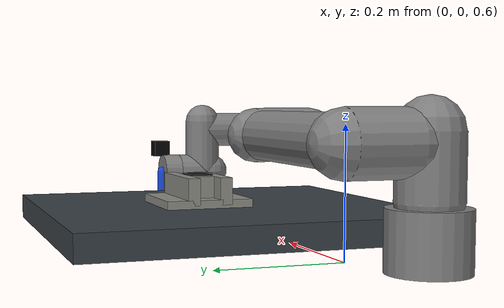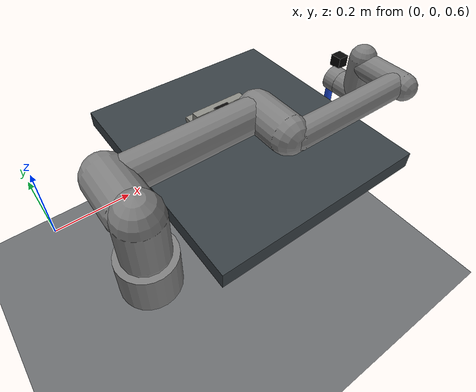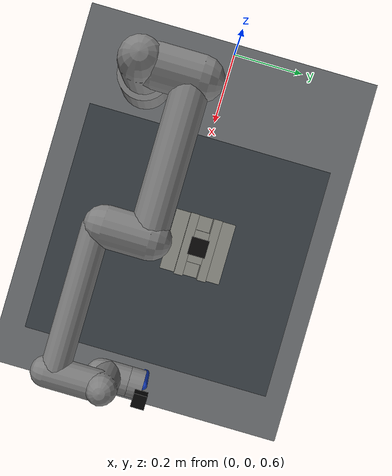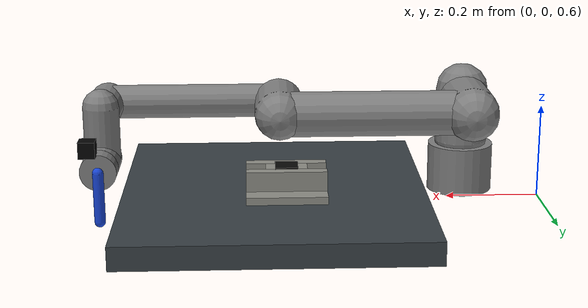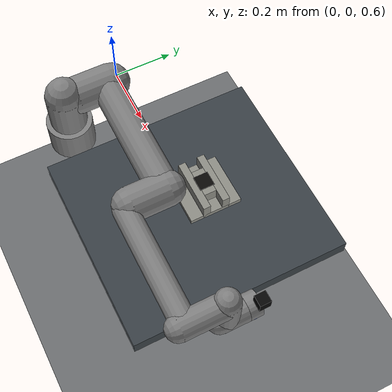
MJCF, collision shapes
<mujoco model="ur5e_peg_in_hole_full">
  <compiler angle="radian" meshdir="assets" autolimits="true"/>
  <option timestep="0.002" gravity="0 0 -9.81" integrator="implicitfast"/>

  <visual>
    <headlight diffuse="0.6 0.6 0.6" ambient="0.1 0.1 0.1" specular="0 0 0"/>
    <global offwidth="2560" offheight="1440"/>
  </visual>

  <custom>
    <numeric name="ik_joint_count" data="6"/>
  </custom>

  <default>
    <default class="ur5e">
      <material specular="0.5" shininess="0.25"/>
      <joint axis="0 1 0" range="-6.28319 6.28319" armature="0.1" limited="true"/>
      <general
        gaintype="fixed"
        biastype="affine"
        ctrlrange="-6.2831 6.2831"
        gainprm="2000"
        biasprm="0 -2000 -400"
        forcerange="-150 150"/>
      <geom friction="1.0 0.005 0.0001" solref="0.01 1" solimp="0.95 0.95 0.001"/>
      <default class="size3">
        <default class="size3_limited">
          <joint range="-3.1415 3.1415"/>
          <general ctrlrange="-3.1415 3.1415"/>
        </default>
      </default>
      <default class="size1">
        <general gainprm="500" biasprm="0 -500 -100" forcerange="-28 28"/>
      </default>
      <default class="visual">
        <geom type="mesh" contype="0" conaffinity="0" group="2"/>
      </default>
      <default class="collision">
        <geom type="capsule" group="3"/>
        <default class="eef_collision">
          <geom type="cylinder"/>
        </default>
      </default>
      <site size="0.001" rgba="0.5 0.5 0.5 0.3" group="4"/>
    </default>
  </default>

  <asset>
    <material class="ur5e" name="black" rgba="0.033 0.033 0.033 1"/>
    <material class="ur5e" name="jointgray" rgba="0.278 0.278 0.278 1"/>
    <material class="ur5e" name="linkgray" rgba="0.82 0.82 0.82 1"/>
    <material class="ur5e" name="urblue" rgba="0.49 0.678 0.8 1"/>

    <material name="mat_floor" rgba="0.42 0.43 0.44 1"/>
    <material name="mat_table" rgba="0.22 0.25 0.27 1"/>
    <material name="mat_hole" rgba="0.55 0.55 0.52 1"/>
    <material name="mat_hole_cavity" rgba="0.035 0.032 0.028 1"/>
    <material name="mat_peg" rgba="0.1 0.28 0.85 1"/>
    <material name="mat_peg_tip_cap_visual" rgba="0.82 0.92 1 0.52"/>
    <material name="mat_peg_tip_outline_visual" rgba="0.02 0.025 0.035 0.88"/>
    <material name="mat_camera" rgba="0.02 0.02 0.02 1"/>

    <mesh file="base_0.obj"/>
    <mesh file="base_1.obj"/>
    <mesh file="shoulder_0.obj"/>
    <mesh file="shoulder_1.obj"/>
    <mesh file="shoulder_2.obj"/>
    <mesh file="upperarm_0.obj"/>
    <mesh file="upperarm_1.obj"/>
    <mesh file="upperarm_2.obj"/>
    <mesh file="upperarm_3.obj"/>
    <mesh file="forearm_0.obj"/>
    <mesh file="forearm_1.obj"/>
    <mesh file="forearm_2.obj"/>
    <mesh file="forearm_3.obj"/>
    <mesh file="wrist1_0.obj"/>
    <mesh file="wrist1_1.obj"/>
    <mesh file="wrist1_2.obj"/>
    <mesh file="wrist2_0.obj"/>
    <mesh file="wrist2_1.obj"/>
    <mesh file="wrist2_2.obj"/>
    <mesh file="wrist3.obj"/>
    <mesh name="true_hex_wall_mesh" file="true_hex_wall_mesh.obj"/>
    <mesh name="true_triangle_wall_mesh" file="true_triangle_wall_mesh.obj"/>
    <mesh name="true_slot_side_wall_mesh" file="true_slot_side_wall_mesh.obj"/>
    <mesh name="true_slot_arc_wall_mesh" file="true_slot_arc_wall_mesh.obj"/>
    <mesh name="true_keyhole_tab_side_wall_mesh" file="true_keyhole_tab_side_wall_mesh.obj"/>
    <mesh name="true_keyhole_tab_front_wall_mesh" file="true_keyhole_tab_front_wall_mesh.obj"/>
    <mesh name="true_keyhole_arc_wall_mesh" file="true_keyhole_arc_wall_mesh.obj"/>
    <mesh name="true_hex_wall_tight_yaw_mesh" file="true_hex_wall_tight_yaw_mesh.obj"/>
    <mesh name="true_triangle_wall_tight_yaw_mesh" file="true_triangle_wall_tight_yaw_mesh.obj"/>
    <mesh name="true_keyhole_tab_side_tight_yaw_mesh" file="true_keyhole_tab_side_tight_yaw_mesh.obj"/>
    <mesh name="true_keyhole_tab_front_tight_yaw_mesh" file="true_keyhole_tab_front_tight_yaw_mesh.obj"/>
    <mesh name="true_keyhole_arc_tight_yaw_mesh" file="true_keyhole_arc_tight_yaw_mesh.obj"/>
    <mesh name="true_hex_fixture_visual_mesh" file="true_hex_fixture_visual_mesh.obj"/>
    <mesh name="true_triangle_fixture_visual_mesh" file="true_triangle_fixture_visual_mesh.obj"/>
    <mesh name="true_slot_fixture_visual_mesh" file="true_slot_fixture_visual_mesh.obj"/>
    <mesh name="true_keyhole_fixture_visual_mesh" file="true_keyhole_fixture_visual_mesh.obj"/>
    <mesh name="true_hex_fixture_visual_tight_yaw_mesh" file="true_hex_fixture_visual_tight_yaw_mesh.obj"/>
    <mesh name="true_triangle_fixture_visual_tight_yaw_mesh" file="true_triangle_fixture_visual_tight_yaw_mesh.obj"/>
    <mesh name="true_keyhole_fixture_visual_tight_yaw_mesh" file="true_keyhole_fixture_visual_tight_yaw_mesh.obj"/>
    <mesh name="peg_slot_mesh" file="peg_slot_mesh.obj"/>
    <mesh name="peg_keyhole_mesh" file="peg_keyhole_mesh.obj"/>
    <mesh name="peg_hex_tip_cap_visual_mesh" file="peg_hex_tip_cap_visual_mesh.obj"/>
    <mesh name="peg_hex_tip_outline_visual_mesh" file="peg_hex_tip_outline_visual_mesh.obj"/>
    <mesh name="peg_hex_side_edge_visual_mesh" file="peg_hex_side_edge_visual_mesh.obj"/>
    <mesh name="peg_triangle_tip_cap_visual_mesh" file="peg_triangle_tip_cap_visual_mesh.obj"/>
    <mesh name="peg_triangle_tip_outline_visual_mesh" file="peg_triangle_tip_outline_visual_mesh.obj"/>
    <mesh name="peg_triangle_side_edge_visual_mesh" file="peg_triangle_side_edge_visual_mesh.obj"/>
    <mesh name="peg_keyhole_tip_cap_visual_mesh" file="peg_keyhole_tip_cap_visual_mesh.obj"/>
    <mesh name="peg_keyhole_tip_outline_visual_mesh" file="peg_keyhole_tip_outline_visual_mesh.obj"/>
    <mesh name="peg_hex_mesh" vertex="-0.00600000 0.01039230 0.05500000 -0.01200000 0.00000000 0.05500000 -0.00600000 -0.01039230 0.05500000 0.00600000 -0.01039230 0.05500000 0.01200000 -0.00000000 0.05500000 0.00600000 0.01039230 0.05500000 -0.00600000 0.01039230 -0.05500000 -0.01200000 0.00000000 -0.05500000 -0.00600000 -0.01039230 -0.05500000 0.00600000 -0.01039230 -0.05500000 0.01200000 -0.00000000 -0.05500000 0.00600000 0.01039230 -0.05500000" face="0 1 2 0 2 3 0 3 4 0 4 5 6 8 7 6 9 8 6 10 9 6 11 10 0 1 7 0 7 6 1 2 8 1 8 7 2 3 9 2 9 8 3 4 10 3 10 9 4 5 11 4 11 10 5 0 6 5 6 11"/>
    <mesh name="peg_triangle_mesh" vertex="-0.01039230 0.00600000 0.05500000 -0.00000000 -0.01200000 0.05500000 0.01039230 0.00600000 0.05500000 -0.01039230 0.00600000 -0.05500000 -0.00000000 -0.01200000 -0.05500000 0.01039230 0.00600000 -0.05500000" face="0 1 2 3 5 4 0 1 4 0 4 3 1 2 5 1 5 4 2 0 3 2 3 5"/>
  </asset>

  <worldbody>
    <light name="key_light" pos="0.2 -0.5 1.7" dir="-0.2 0.4 -1" diffuse="0.9 0.9 0.85"/>
    <light name="fill_light" pos="0.8 0.6 1.2" dir="-0.5 -0.4 -1" diffuse="0.35 0.38 0.42"/>
    <camera name="overview" pos="1.25 -1.05 1.2" xyaxes="0.65 0.76 0 -0.34 0.29 0.89" fovy="45"/>

    <geom name="floor" type="plane" size="2 2 0.02" material="mat_floor"/>
    <geom name="table_top" type="box" pos="0.575 0 0.60" size="0.325 0.35 0.025" material="mat_table"/>

    <body name="hole_body" mocap="true" pos="0.55 0.05 0.65">
      <geom name="hole_plate" type="box" pos="0 0 -0.012" size="0.085 0.085 0.008" material="mat_hole"/>
      <geom name="hole_cavity_visual" type="box" pos="0 0 0.040" size="0.024 0.024 0.0015" material="mat_hole_cavity" rgba="0.035 0.032 0.028 1" contype="0" conaffinity="0"/>
      <geom name="hole_key_tab_cavity_visual" type="box" pos="0 0 -1" size="0.001 0.001 0.001" material="mat_hole_cavity" rgba="0 0 0 0" contype="0" conaffinity="0"/>
      <geom name="hole_north" type="box" pos="0 0.032 0.012" size="0.085 0.012 0.026" material="mat_hole"/>
      <geom name="hole_south" type="box" pos="0 -0.032 0.012" size="0.085 0.012 0.026" material="mat_hole"/>
      <geom name="hole_east" type="box" pos="0.032 0 0.012" size="0.012 0.020 0.026" material="mat_hole"/>
      <geom name="hole_west" type="box" pos="-0.032 0 0.012" size="0.012 0.020 0.026" material="mat_hole"/>
      <geom name="hole_aux_0" type="box" pos="0 0 -1" size="0.001 0.001 0.001" material="mat_hole" contype="0" conaffinity="0" rgba="0 0 0 0"/>
      <geom name="hole_aux_1" type="box" pos="0 0 -1" size="0.001 0.001 0.001" material="mat_hole" contype="0" conaffinity="0" rgba="0 0 0 0"/>
      <geom name="hole_aux_2" type="box" pos="0 0 -1" size="0.001 0.001 0.001" material="mat_hole" contype="0" conaffinity="0" rgba="0 0 0 0"/>
      <geom name="hole_aux_3" type="box" pos="0 0 -1" size="0.001 0.001 0.001" material="mat_hole" contype="0" conaffinity="0" rgba="0 0 0 0"/>
      <geom name="hole_aux_4" type="box" pos="0 0 -1" size="0.001 0.001 0.001" material="mat_hole" contype="0" conaffinity="0" rgba="0 0 0 0"/>
      <geom name="hole_aux_5" type="box" pos="0 0 -1" size="0.001 0.001 0.001" material="mat_hole" contype="0" conaffinity="0" rgba="0 0 0 0"/>
      <geom name="hole_aux_6" type="box" pos="0 0 -1" size="0.001 0.001 0.001" material="mat_hole" contype="0" conaffinity="0" rgba="0 0 0 0"/>
      <geom name="hole_aux_7" type="box" pos="0 0 -1" size="0.001 0.001 0.001" material="mat_hole" contype="0" conaffinity="0" rgba="0 0 0 0"/>
      <geom name="hole_polygon_visual_0" type="box" pos="0 0 -1" size="0.001 0.001 0.001" material="mat_hole" contype="0" conaffinity="0" rgba="0 0 0 0"/>
      <geom name="hole_polygon_visual_1" type="box" pos="0 0 -1" size="0.001 0.001 0.001" material="mat_hole" contype="0" conaffinity="0" rgba="0 0 0 0"/>
      <geom name="hole_polygon_visual_2" type="box" pos="0 0 -1" size="0.001 0.001 0.001" material="mat_hole" contype="0" conaffinity="0" rgba="0 0 0 0"/>
      <geom name="hole_polygon_visual_3" type="box" pos="0 0 -1" size="0.001 0.001 0.001" material="mat_hole" contype="0" conaffinity="0" rgba="0 0 0 0"/>
      <geom name="hole_polygon_visual_4" type="box" pos="0 0 -1" size="0.001 0.001 0.001" material="mat_hole" contype="0" conaffinity="0" rgba="0 0 0 0"/>
      <geom name="hole_polygon_visual_5" type="box" pos="0 0 -1" size="0.001 0.001 0.001" material="mat_hole" contype="0" conaffinity="0" rgba="0 0 0 0"/>
      <geom name="true_fixture_wall_0" type="mesh" mesh="true_hex_wall_mesh" pos="0 0 -1" material="mat_hole" contype="0" conaffinity="0" rgba="0 0 0 0"/>
      <geom name="true_fixture_wall_1" type="mesh" mesh="true_hex_wall_mesh" pos="0 0 -1" material="mat_hole" contype="0" conaffinity="0" rgba="0 0 0 0"/>
      <geom name="true_fixture_wall_2" type="mesh" mesh="true_hex_wall_mesh" pos="0 0 -1" material="mat_hole" contype="0" conaffinity="0" rgba="0 0 0 0"/>
      <geom name="true_fixture_wall_3" type="mesh" mesh="true_hex_wall_mesh" pos="0 0 -1" material="mat_hole" contype="0" conaffinity="0" rgba="0 0 0 0"/>
      <geom name="true_fixture_wall_4" type="mesh" mesh="true_hex_wall_mesh" pos="0 0 -1" material="mat_hole" contype="0" conaffinity="0" rgba="0 0 0 0"/>
      <geom name="true_fixture_wall_5" type="mesh" mesh="true_hex_wall_mesh" pos="0 0 -1" material="mat_hole" contype="0" conaffinity="0" rgba="0 0 0 0"/>
      <geom name="true_fixture_wall_6" type="mesh" mesh="true_slot_arc_wall_mesh" pos="0 0 -1" material="mat_hole" contype="0" conaffinity="0" rgba="0 0 0 0"/>
      <geom name="true_fixture_wall_7" type="mesh" mesh="true_slot_arc_wall_mesh" pos="0 0 -1" material="mat_hole" contype="0" conaffinity="0" rgba="0 0 0 0"/>
      <geom name="true_fixture_wall_8" type="mesh" mesh="true_keyhole_arc_wall_mesh" pos="0 0 -1" material="mat_hole" contype="0" conaffinity="0" rgba="0 0 0 0"/>
      <geom name="true_fixture_wall_9" type="mesh" mesh="true_keyhole_arc_wall_mesh" pos="0 0 -1" material="mat_hole" contype="0" conaffinity="0" rgba="0 0 0 0"/>
      <geom name="true_fixture_wall_10" type="mesh" mesh="true_keyhole_arc_wall_mesh" pos="0 0 -1" material="mat_hole" contype="0" conaffinity="0" rgba="0 0 0 0"/>
      <geom name="true_fixture_wall_11" type="mesh" mesh="true_keyhole_arc_wall_mesh" pos="0 0 -1" material="mat_hole" contype="0" conaffinity="0" rgba="0 0 0 0"/>
      <geom name="true_fixture_visual" type="mesh" mesh="true_hex_fixture_visual_mesh" pos="0 0 -1" material="mat_hole" contype="0" conaffinity="0" rgba="0 0 0 0"/>
      <site name="hole_site" pos="0 0 0" size="0.0001" rgba="0 0 0 0"/>
      <camera name="hole_top" pos="0 0 0.20" xyaxes="1 0 0 0 1 0" fovy="35"/>
    </body>

    <body name="base" pos="0.136 -0.223 0.602" childclass="ur5e">
      <inertial mass="4.0" pos="0 0 0" diaginertia="0.00443333156 0.00443333156 0.0072"/>
      <geom mesh="base_0" material="black" class="visual"/>
      <geom mesh="base_1" material="jointgray" class="visual"/>
      <geom name="base_geom" type="cylinder" size="0.075 0.055" group="3"/>

      <body name="shoulder_link" pos="0 0 0.163">
        <inertial mass="3.7" pos="0 0 0" diaginertia="0.0102675 0.0102675 0.00666"/>
        <joint name="shoulder_pan" class="size3" axis="0 0 1"/>
        <geom mesh="shoulder_0" material="urblue" class="visual"/>
        <geom mesh="shoulder_1" material="black" class="visual"/>
        <geom mesh="shoulder_2" material="jointgray" class="visual"/>
        <geom name="shoulder_geom" class="collision" size="0.06 0.06" pos="0 0 -0.04"/>

        <body name="upper_arm_link" pos="0 0.138 0" quat="1 0 1 0">
          <inertial mass="8.393" pos="0 0 0.2125" diaginertia="0.133886 0.133886 0.0151074"/>
          <joint name="shoulder_lift" class="size3"/>
          <geom mesh="upperarm_0" material="linkgray" class="visual"/>
          <geom mesh="upperarm_1" material="black" class="visual"/>
          <geom mesh="upperarm_2" material="jointgray" class="visual"/>
          <geom mesh="upperarm_3" material="urblue" class="visual"/>
          <geom name="upper_arm_shoulder_geom" class="collision" pos="0 -0.04 0" quat="1 1 0 0" size="0.06 0.06"/>
          <geom name="upper_arm_geom" class="collision" size="0.05 0.2" pos="0 0 0.2"/>

          <body name="forearm_link" pos="0 -0.131 0.425">
            <inertial mass="2.275" pos="0 0 0.196" diaginertia="0.0311796 0.0311796 0.004095"/>
            <joint name="elbow" class="size3_limited"/>
            <geom mesh="forearm_0" material="urblue" class="visual"/>
            <geom mesh="forearm_1" material="linkgray" class="visual"/>
            <geom mesh="forearm_2" material="black" class="visual"/>
            <geom mesh="forearm_3" material="jointgray" class="visual"/>
            <geom name="forearm_elbow_geom" class="collision" pos="0 0.08 0" quat="1 1 0 0" size="0.055 0.06"/>
            <geom name="forearm_geom" class="collision" size="0.038 0.19" pos="0 0 0.2"/>

            <body name="wrist_1_link" pos="0 0 0.392" quat="1 0 1 0">
              <inertial mass="1.219" pos="0 0.127 0" diaginertia="0.0025599 0.0025599 0.0021942"/>
              <joint name="wrist_1" class="size1"/>
              <geom mesh="wrist1_0" material="black" class="visual"/>
              <geom mesh="wrist1_1" material="urblue" class="visual"/>
              <geom mesh="wrist1_2" material="jointgray" class="visual"/>
              <geom name="wrist_1_geom" class="collision" pos="0 0.05 0" quat="1 1 0 0" size="0.04 0.07"/>

              <body name="wrist_2_link" pos="0 0.127 0">
                <inertial mass="1.219" pos="0 0 0.1" diaginertia="0.0025599 0.0025599 0.0021942"/>
                <joint name="wrist_2" axis="0 0 1" class="size1"/>
                <geom mesh="wrist2_0" material="black" class="visual"/>
                <geom mesh="wrist2_1" material="urblue" class="visual"/>
                <geom mesh="wrist2_2" material="jointgray" class="visual"/>
                <geom name="wrist_2_base_geom" class="collision" size="0.04 0.06" pos="0 0 0.04"/>
                <geom name="wrist_2_geom" class="collision" pos="0 0.02 0.1" quat="1 1 0 0" size="0.04 0.04"/>

                <body name="wrist_3_link" pos="0 0 0.1">
                  <inertial
                    mass="0.1889"
                    pos="0 0.0771683 0"
                    quat="1 0 0 1"
                    diaginertia="0.000132134 9.90863e-05 9.90863e-05"/>
                  <joint name="wrist_3" class="size1"/>
                  <geom material="linkgray" mesh="wrist3" class="visual"/>
                  <geom name="wrist_3_geom" class="eef_collision" pos="0 0.08 0" quat="1 1 0 0" size="0.04 0.02"/>

                  <body name="tool0" pos="0 0.1 0" quat="0 1 0 0">
                    <geom name="camera_geom" type="box" pos="-0.02 0 0.055" size="0.018 0.018 0.018" material="mat_camera" density="200" contype="0" conaffinity="0"/>
                    <geom name="peg_geom" type="capsule" fromto="0 0 0 0 0 -0.11" size="0.012" material="mat_peg" density="780"/>
                    <geom name="peg_tip_cap_visual" type="mesh" mesh="peg_hex_tip_cap_visual_mesh" pos="0 0 -0.11015" material="mat_peg_tip_cap_visual" contype="0" conaffinity="0" rgba="0 0 0 0"/>
                    <geom name="peg_tip_outline_visual" type="mesh" mesh="peg_hex_tip_outline_visual_mesh" pos="0 0 -0.11025" material="mat_peg_tip_outline_visual" contype="0" conaffinity="0" rgba="0 0 0 0"/>
                    <geom name="peg_side_edge_visual" type="mesh" mesh="peg_hex_side_edge_visual_mesh" pos="0 0 -0.055" material="mat_peg_tip_outline_visual" contype="0" conaffinity="0" rgba="0 0 0 0"/>
                    <site name="eef_site" pos="0 0 0" size="0.0001" rgba="0 0 0 0"/>
                    <site name="peg_tip" pos="0 0 -0.11" size="0.0001" rgba="0 0 0 0"/>
                    <camera
                      name="wrist_cam"
                      pos="-0.09 0.12 0.16"
                      xyaxes="-0.548392 0.766151 0.335081 -0.835508 -0.518563 -0.181712"
                      fovy="100"/>
                  </body>
                </body>
              </body>
            </body>
          </body>
        </body>
      </body>
    </body>
  </worldbody>

  <actuator>
    <general class="size3" name="shoulder_pan_ctrl" joint="shoulder_pan"/>
    <general class="size3" name="shoulder_lift_ctrl" joint="shoulder_lift"/>
    <general class="size3_limited" name="elbow_ctrl" joint="elbow"/>
    <general class="size1" name="wrist_1_ctrl" joint="wrist_1"/>
    <general class="size1" name="wrist_2_ctrl" joint="wrist_2"/>
    <general class="size1" name="wrist_3_ctrl" joint="wrist_3"/>
  </actuator>

  <keyframe>
    <key name="home" qpos="-1.5708 -1.5708 1.5708 -1.5708 -1.5708 0" ctrl="-1.5708 -1.5708 1.5708 -1.5708 -1.5708 0"/>
  </keyframe>
</mujoco>
